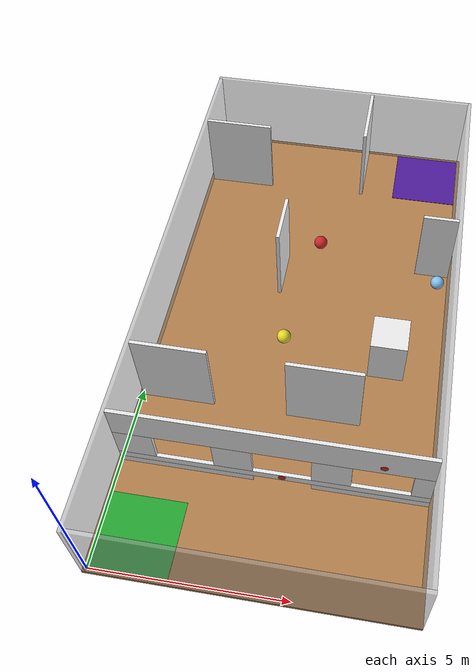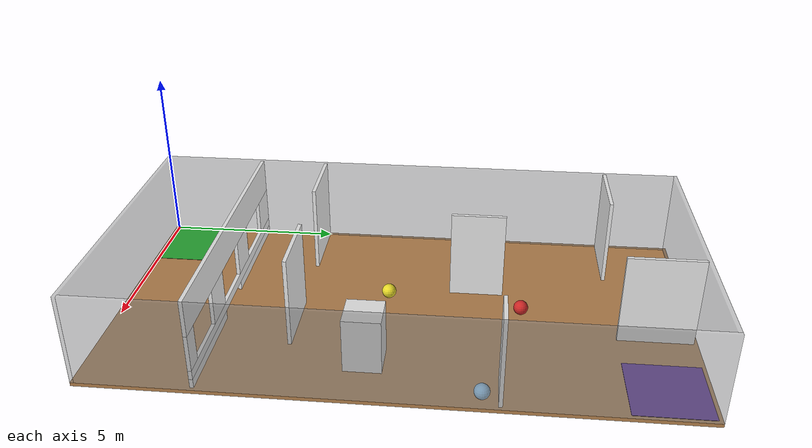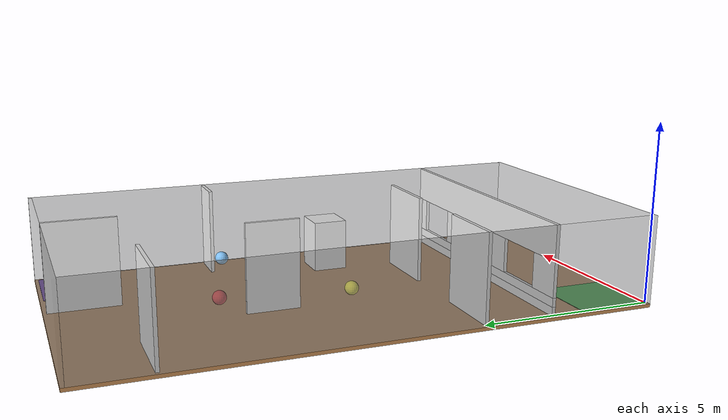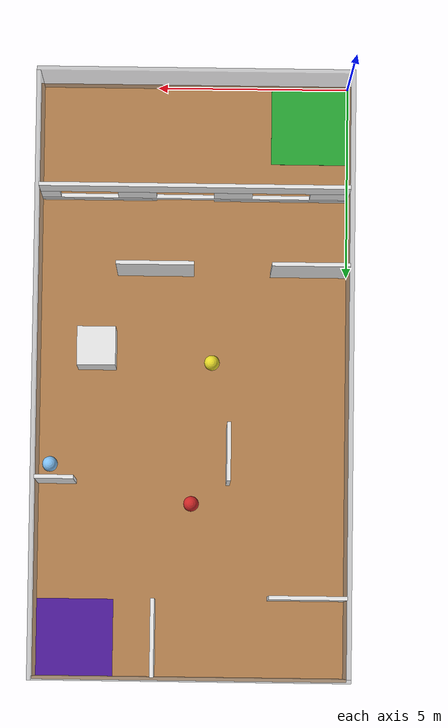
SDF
<sdf version="1.5">
 <world name="default">
  <include><uri>model://sun</uri></include>
  <physics name="default_physics" default="0" type="ode">
   <gravity>0 0 -9.8066</gravity>
   <ode>
    <solver>
     <type>quick</type>
     <iters>10</iters>
     <sor>1.3</sor>
     <use_dynamic_moi_rescaling>0</use_dynamic_moi_rescaling>
    </solver>
    <constraints>
     <cfm>0</cfm>
     <erp>0.2</erp>
     <contact_max_correcting_vel>100</contact_max_correcting_vel>
     <contact_surface_layer>0.001</contact_surface_layer>
    </constraints>
   </ode>
   <max_step_size>0.004</max_step_size>
   <real_time_factor>1</real_time_factor>
   <real_time_update_rate>250</real_time_update_rate>
   <magnetic_field>6.0e-6 2.3e-5 -4.2e-5</magnetic_field>
  </physics>
  <model name="box_1">
   <pose>4.05 -0.05 1.25  0 0 0</pose>
   <static>true</static>
   <link name="link">
    <collision name="collision"><geometry><box><size>8.1 0.1 2.5</size></box></geometry></collision>
    <visual name="visual">
     <geometry><box><size>8.1 0.1 2.5</size></box></geometry>
     <material>
      <script><name>Gazebo/GreyTransparent</name><uri>file://media/materials/scripts/gazebo.material</uri></script>
     </material>
    </visual>
   </link>
  </model>
  <model name="box_2">
   <pose>8.05 7.8 1.25  0 0 0</pose>
   <static>true</static>
   <link name="link">
    <collision name="collision"><geometry><box><size>0.1 15.6 2.5</size></box></geometry></collision>
    <visual name="visual">
     <geometry><box><size>0.1 15.6 2.5</size></box></geometry>
     <material>
      <script><name>Gazebo/GreyTransparent</name><uri>file://media/materials/scripts/gazebo.material</uri></script>
     </material>
    </visual>
   </link>
  </model>
  <model name="box_3">
   <pose>3.95 15.55 1.25  0 0 0</pose>
   <static>true</static>
   <link name="link">
    <collision name="collision"><geometry><box><size>8.1 0.1 2.5</size></box></geometry></collision>
    <visual name="visual">
     <geometry><box><size>8.1 0.1 2.5</size></box></geometry>
     <material>
      <script><name>Gazebo/GreyTransparent</name><uri>file://media/materials/scripts/gazebo.material</uri></script>
     </material>
    </visual>
   </link>
  </model>
  <model name="box_4">
   <pose>-0.05 7.7 1.25  0 0 0</pose>
   <static>true</static>
   <link name="link">
    <collision name="collision"><geometry><box><size>0.1 15.6 2.5</size></box></geometry></collision>
    <visual name="visual">
     <geometry><box><size>0.1 15.6 2.5</size></box></geometry>
     <material>
      <script><name>Gazebo/GreyTransparent</name><uri>file://media/materials/scripts/gazebo.material</uri></script>
     </material>
    </visual>
   </link>
  </model>
  <model name="box_5">
   <pose>4.0 7.75 -0.05  0 0 0</pose>
   <static>true</static>
   <link name="link">
    <collision name="collision"><geometry><box><size>8.2 15.7 0.1</size></box></geometry></collision>
    <visual name="visual">
     <geometry><box><size>8.2 15.7 0.1</size></box></geometry>
     <material>
      <script><name>Gazebo/WoodFloor</name><uri>file://media/materials/scripts/gazebo.material</uri></script>
     </material>
    </visual>
    <surface>
     <contact><collide_bitmask>65535</collide_bitmask></contact>
     <friction><ode><mu>100</mu><mu2>50</mu2></ode></friction>
    </surface>
   </link>
  </model>
  <model name="box_6">
   <pose>1.0 4.95 1.25  0 0 0</pose>
   <static>true</static>
   <link name="link">
    <collision name="collision"><geometry><box><size>2.0 0.1 2.5</size></box></geometry></collision>
    <visual name="visual">
     <geometry><box><size>2.0 0.1 2.5</size></box></geometry>
     <material>
      <script><name>Gazebo/White</name><uri>file://media/materials/scripts/gazebo.material</uri></script>
     </material>
    </visual>
   </link>
  </model>
  <model name="box_7">
   <pose>5.0 4.95 1.25  0 0 0</pose>
   <static>true</static>
   <link name="link">
    <collision name="collision"><geometry><box><size>2.0 0.1 2.5</size></box></geometry></collision>
    <visual name="visual">
     <geometry><box><size>2.0 0.1 2.5</size></box></geometry>
     <material>
      <script><name>Gazebo/White</name><uri>file://media/materials/scripts/gazebo.material</uri></script>
     </material>
    </visual>
   </link>
  </model>
  <model name="box_8">
   <pose>3.05 9.75 1.25  0 0 0</pose>
   <static>true</static>
   <link name="link">
    <collision name="collision"><geometry><box><size>0.1 1.5 2.5</size></box></geometry></collision>
    <visual name="visual">
     <geometry><box><size>0.1 1.5 2.5</size></box></geometry>
     <material>
      <script><name>Gazebo/White</name><uri>file://media/materials/scripts/gazebo.material</uri></script>
     </material>
    </visual>
   </link>
  </model>
  <model name="box_9">
   <pose>1.0 13.45 1.25  0 0 0</pose>
   <static>true</static>
   <link name="link">
    <collision name="collision"><geometry><box><size>2.0 0.1 2.5</size></box></geometry></collision>
    <visual name="visual">
     <geometry><box><size>2.0 0.1 2.5</size></box></geometry>
     <material>
      <script><name>Gazebo/White</name><uri>file://media/materials/scripts/gazebo.material</uri></script>
     </material>
    </visual>
   </link>
  </model>
  <model name="box_10">
   <pose>7.5 10.45 1.25  0 0 0</pose>
   <static>true</static>
   <link name="link">
    <collision name="collision"><geometry><box><size>1.0 0.1 2.5</size></box></geometry></collision>
    <visual name="visual">
     <geometry><box><size>1.0 0.1 2.5</size></box></geometry>
     <material>
      <script><name>Gazebo/White</name><uri>file://media/materials/scripts/gazebo.material</uri></script>
     </material>
    </visual>
   </link>
  </model>
  <model name="box_11">
   <pose>4.95 14.5 1.25  0 0 0</pose>
   <static>true</static>
   <link name="link">
    <collision name="collision"><geometry><box><size>0.1 2.0 2.5</size></box></geometry></collision>
    <visual name="visual">
     <geometry><box><size>0.1 2.0 2.5</size></box></geometry>
     <material>
      <script><name>Gazebo/White</name><uri>file://media/materials/scripts/gazebo.material</uri></script>
     </material>
    </visual>
   </link>
  </model>
  <model name="box_12">
   <pose>6.5 7.0 0.75  0 0 0</pose>
   <static>true</static>
   <link name="link">
    <collision name="collision"><geometry><box><size>1.0 1.0 1.5</size></box></geometry></collision>
    <visual name="visual">
     <geometry><box><size>1.0 1.0 1.5</size></box></geometry>
     <material>
      <script><name>Gazebo/White</name><uri>file://media/materials/scripts/gazebo.material</uri></script>
     </material>
    </visual>
   </link>
  </model>
  <model name="box_13">
   <pose>1.0 1.0 0.005  0 0 0</pose>
   <static>true</static>
   <link name="link">
    <collision name="collision"><geometry><box><size>2.0 2.0 0.01</size></box></geometry></collision>
    <visual name="visual">
     <geometry><box><size>2.0 2.0 0.01</size></box></geometry>
     <material>
      <script><name>Gazebo/Green</name><uri>file://media/materials/scripts/gazebo.material</uri></script>
     </material>
    </visual>
   </link>
  </model>
  <model name="box_14">
   <pose>7.0 14.5 0.005  0 0 0</pose>
   <static>true</static>
   <link name="link">
    <collision name="collision"><geometry><box><size>2.0 2.0 0.01</size></box></geometry></collision>
    <visual name="visual">
     <geometry><box><size>2.0 2.0 0.01</size></box></geometry>
     <material>
      <script><name>Gazebo/Indigo</name><uri>file://media/materials/scripts/gazebo.material</uri></script>
     </material>
    </visual>
   </link>
  </model>
  <model name="box_15">
   <pose>4.0 2.95 0.375  0 0 0</pose>
   <static>true</static>
   <link name="link">
    <collision name="collision"><geometry><box><size>8.0 0.1 0.25</size></box></geometry></collision>
    <visual name="visual">
     <geometry><box><size>8.0 0.1 0.25</size></box></geometry>
     <material>
      <script><name>Gazebo/White</name><uri>file://media/materials/scripts/gazebo.material</uri></script>
     </material>
    </visual>
   </link>
  </model>
  <model name="box_15_h1">
   <pose>1.75 2.95 0.125  0 0 0</pose>
   <static>true</static>
   <link name="link">
    <collision name="collision"><geometry><box><size>3.5 0.1 0.25</size></box></geometry></collision>
    <visual name="visual">
     <geometry><box><size>3.5 0.1 0.25</size></box></geometry>
     <material>
      <script><name>Gazebo/White</name><uri>file://media/materials/scripts/gazebo.material</uri></script>
     </material>
    </visual>
   </link>
  </model>
  <model name="box_15_h2">
   <pose>6.5 2.95 0.125  0 0 0</pose>
   <static>true</static>
   <link name="link">
    <collision name="collision"><geometry><box><size>3.0 0.1 0.25</size></box></geometry></collision>
    <visual name="visual">
     <geometry><box><size>3.0 0.1 0.25</size></box></geometry>
     <material>
      <script><name>Gazebo/White</name><uri>file://media/materials/scripts/gazebo.material</uri></script>
     </material>
    </visual>
   </link>
  </model>
  <model name="box_16">
   <pose>4.0 2.95 2.0  0 0 0</pose>
   <static>true</static>
   <link name="link">
    <collision name="collision"><geometry><box><size>8.0 0.1 1.0</size></box></geometry></collision>
    <visual name="visual">
     <geometry><box><size>8.0 0.1 1.0</size></box></geometry>
     <material>
      <script><name>Gazebo/White</name><uri>file://media/materials/scripts/gazebo.material</uri></script>
     </material>
    </visual>
   </link>
  </model>
  <model name="box_17">
   <pose>0.5 2.95 1.0  0 0 0</pose>
   <static>true</static>
   <link name="link">
    <collision name="collision"><geometry><box><size>1.0 0.1 1.0</size></box></geometry></collision>
    <visual name="visual">
     <geometry><box><size>1.0 0.1 1.0</size></box></geometry>
     <material>
      <script><name>Gazebo/White</name><uri>file://media/materials/scripts/gazebo.material</uri></script>
     </material>
    </visual>
   </link>
  </model>
  <model name="box_18">
   <pose>3.0 2.95 1.0  0 0 0</pose>
   <static>true</static>
   <link name="link">
    <collision name="collision"><geometry><box><size>1.0 0.1 1.0</size></box></geometry></collision>
    <visual name="visual">
     <geometry><box><size>1.0 0.1 1.0</size></box></geometry>
     <material>
      <script><name>Gazebo/White</name><uri>file://media/materials/scripts/gazebo.material</uri></script>
     </material>
    </visual>
   </link>
  </model>
  <model name="box_19">
   <pose>5.5 2.95 1.0  0 0 0</pose>
   <static>true</static>
   <link name="link">
    <collision name="collision"><geometry><box><size>1.0 0.1 1.0</size></box></geometry></collision>
    <visual name="visual">
     <geometry><box><size>1.0 0.1 1.0</size></box></geometry>
     <material>
      <script><name>Gazebo/White</name><uri>file://media/materials/scripts/gazebo.material</uri></script>
     </material>
    </visual>
   </link>
  </model>
  <model name="box_20">
   <pose>7.75 2.95 1.0  0 0 0</pose>
   <static>true</static>
   <link name="link">
    <collision name="collision"><geometry><box><size>0.5 0.1 1.0</size></box></geometry></collision>
    <visual name="visual">
     <geometry><box><size>0.5 0.1 1.0</size></box></geometry>
     <material>
      <script><name>Gazebo/White</name><uri>file://media/materials/scripts/gazebo.material</uri></script>
     </material>
    </visual>
   </link>
  </model>
  <model name="cylinder_1">
   <pose>6.75 2.9 1.75  1.57079632679 0 0</pose>
   <static>true</static>
   <link name="link">
    <visual name="visual">
     <geometry><cylinder><radius>0.1</radius><length>0.002</length></cylinder></geometry>
     <material>
      <script><name>Gazebo/Red</name><uri>file://media/materials/scripts/gazebo.material</uri></script>
     </material>
    </visual>
   </link>
  </model>
  <model name="cylinder_2">
   <pose>4.25 2.9 0.375  1.57079632679 0 0</pose>
   <static>true</static>
   <link name="link">
    <visual name="visual">
     <geometry><cylinder><radius>0.1</radius><length>0.002</length></cylinder></geometry>
     <material>
      <script><name>Gazebo/Red</name><uri>file://media/materials/scripts/gazebo.material</uri></script>
     </material>
    </visual>
   </link>
  </model>
  <model name="box_21">
   <pose>1.75 2.95 1.0  0 0 0</pose>
   <static>true</static>
   <link name="link">
    <collision name="collision"><geometry><box><size>1.5 0.1 1.0</size></box></geometry></collision>
    <visual name="visual">
     <geometry><box><size>1.5 0.1 1.0</size></box></geometry>
     <material>
      <script><name>Gazebo/Grey</name><uri>file://media/materials/scripts/gazebo.material</uri></script>
     </material>
     <transparency>1.0</transparency>
    </visual>
   </link>
  </model>
  <model name="box_22">
   <pose>4.25 2.95 1.0  0 0 0</pose>
   <static>true</static>
   <link name="link">
    <collision name="collision"><geometry><box><size>1.5 0.1 1.0</size></box></geometry></collision>
    <visual name="visual">
     <geometry><box><size>1.5 0.1 1.0</size></box></geometry>
     <material>
      <script><name>Gazebo/Grey</name><uri>file://media/materials/scripts/gazebo.material</uri></script>
     </material>
     <transparency>1.0</transparency>
    </visual>
   </link>
  </model>
  <model name="sphere_1">
   <pose>4.0 11.0 0.21  0 0 0</pose>
   <static>true</static>
   <link name="link">
    <collision name="collision"><geometry><sphere><radius>0.2</radius></sphere></geometry></collision>
    <visual name="visual">
     <geometry><sphere><radius>0.2</radius></sphere></geometry>
     <material>
      <script><name>Gazebo/Red</name><uri>file://media/materials/scripts/gazebo.material</uri></script>
     </material>
    </visual>
   </link>
  </model>
  <model name="sphere_2">
   <pose>3.5 7.3 0.21  0 0 0</pose>
   <static>true</static>
   <link name="link">
    <collision name="collision"><geometry><sphere><radius>0.2</radius></sphere></geometry></collision>
    <visual name="visual">
     <geometry><sphere><radius>0.2</radius></sphere></geometry>
     <material>
      <script><name>Gazebo/Yellow</name><uri>file://media/materials/scripts/gazebo.material</uri></script>
     </material>
    </visual>
   </link>
  </model>
  <model name="sphere_3">
   <pose>7.7 10 0.2 0 0 0</pose>
   <static>true</static>
   <link name="link">
    <collision name="collision"><geometry><sphere><radius>0.2</radius></sphere></geometry></collision>
    <visual name="visual">
     <geometry><sphere><radius>0.2</radius></sphere></geometry>
     <material>
      <script><name>Gazebo/SkyBlue</name><uri>file://media/materials/scripts/gazebo.material</uri></script>
     </material>
    </visual>
   </link>
  </model>
 </world>
</sdf>
